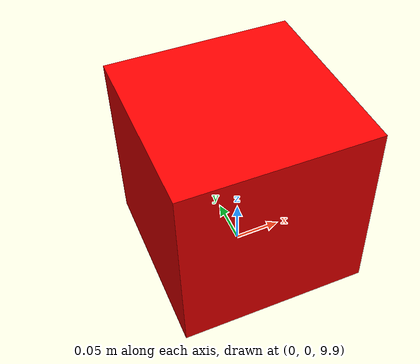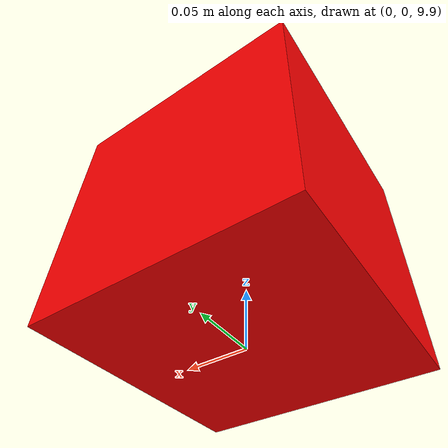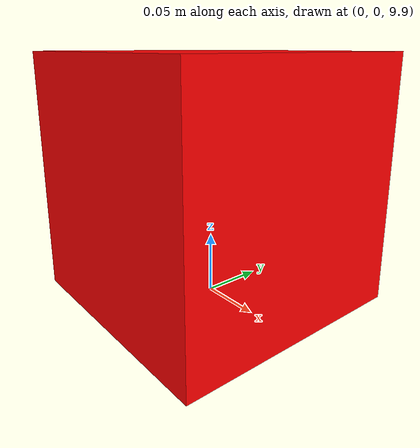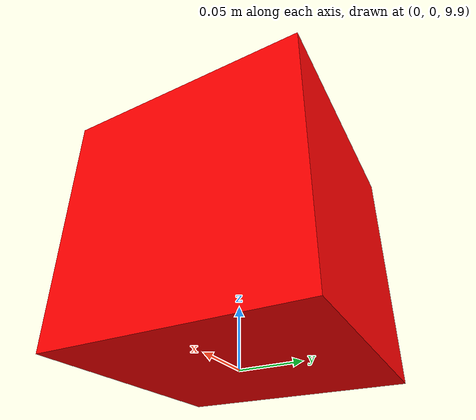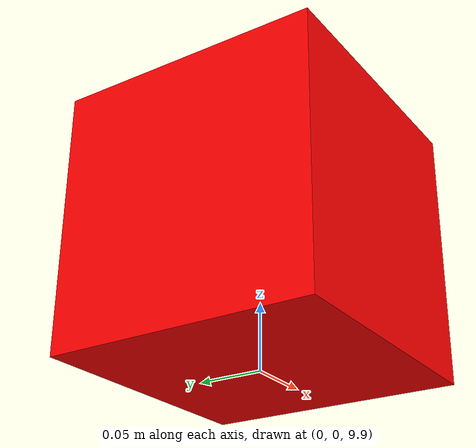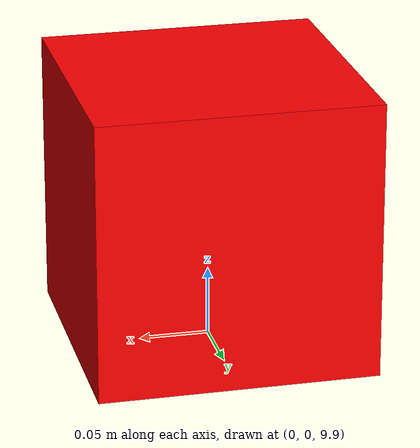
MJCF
<mujoco>
    <option gravity="0 0 -.5" />
    <worldbody>

        <!-- this creates the floor -->
        <geom
            type="plane"
            size="5 5 0.1"
            rgba="0.8 0.8 0.8 1"
        />

        <!-- creates a rigid body following x, y, z so x=0, y=0, z=.5 centered and .5 above in space -->
        <body
            pos="0 0 10"
        >
            <joint type="free" />

            <!-- the visible shape -->
            <geom
                type="box"
                size="0.1 0.1 0.1"
                solref="0.002 1"
                mass="1"
                rgba="1 0 0 1" />
        </body>
    </worldbody>
</mujoco>
